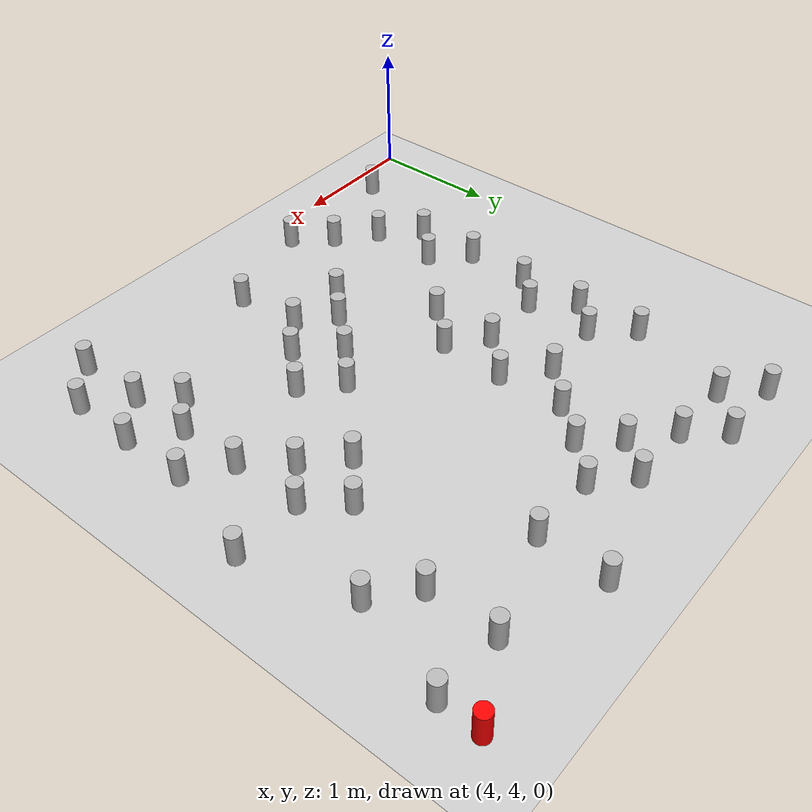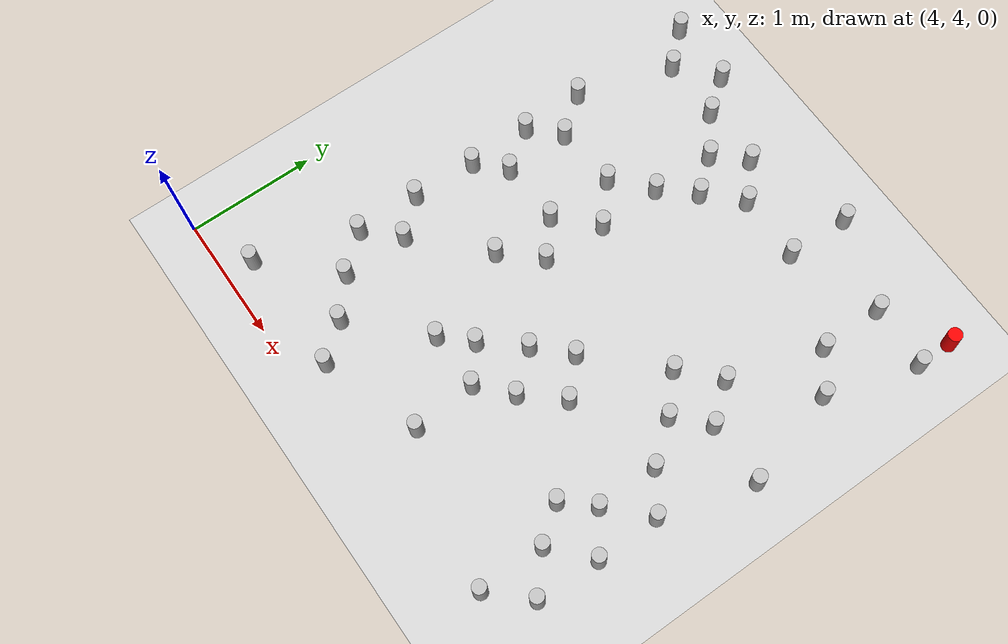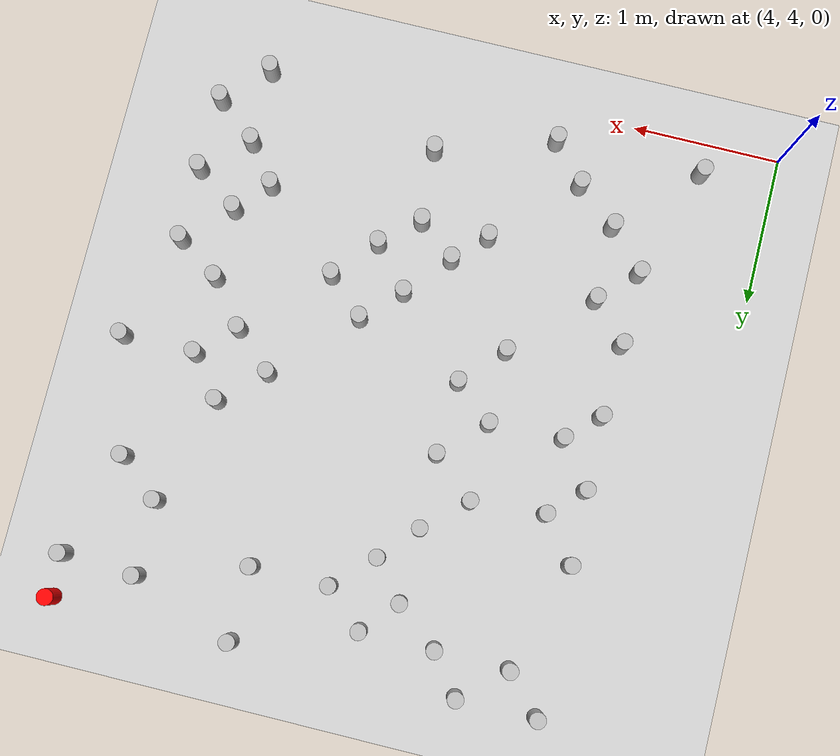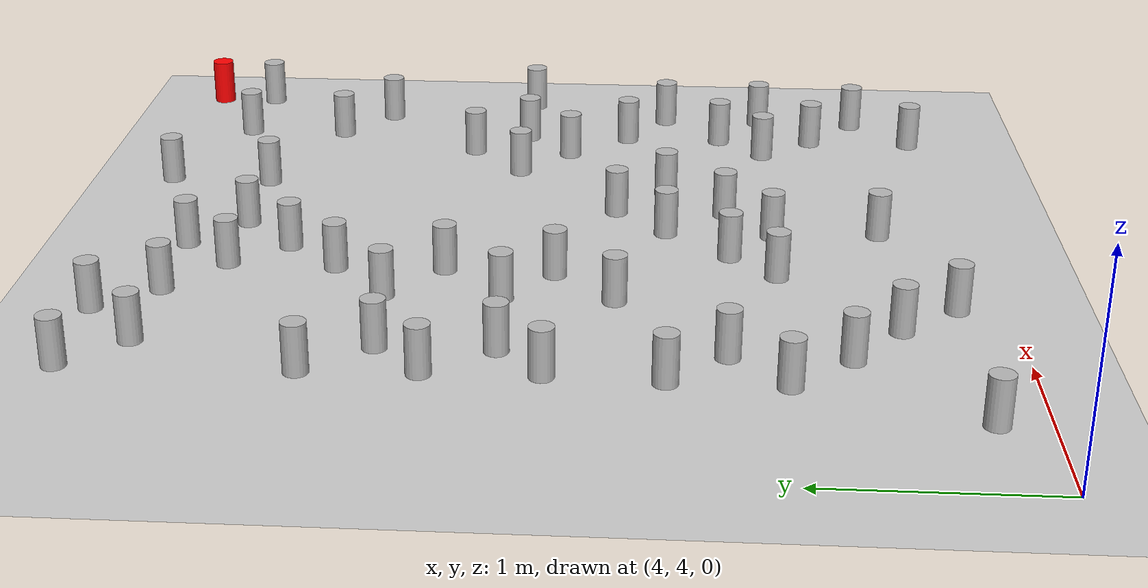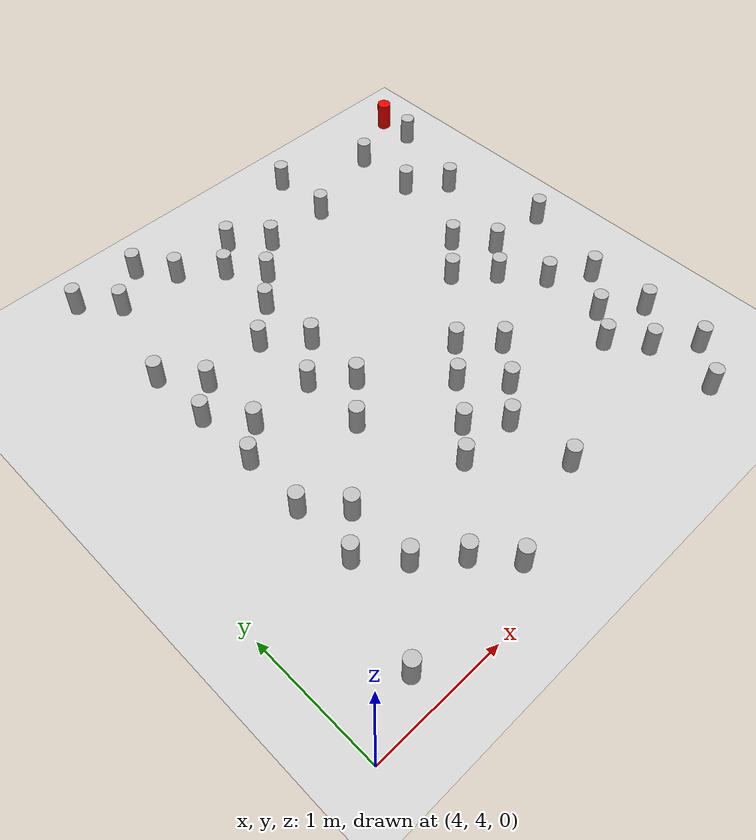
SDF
<sdf version="1.6">
 <world name="default">
  <model name="ground_plane">
   <static>1</static>
   <link name="link">
    <collision name="collision">
     <geometry><plane><normal>0 0 1</normal><size>100 100</size></plane></geometry>
     <surface><friction><ode><mu>100</mu><mu2>50</mu2></ode></friction></surface>
    </collision>
    <visual name="visual">
     <cast_shadows>0</cast_shadows>
     <geometry><plane><normal>0 0 1</normal><size>100 100</size></plane></geometry>
     <material>
      <script><uri>file://media/materials/scripts/gazebo.material</uri><name>Gazebo/Grey</name></script>
     </material>
    </visual>
   </link>
  </model>
  <model name="goal">
   <link name="link">
    <pose>0 0 0.115 0 -0 0</pose>
    <inertial>
     <mass>0.0005</mass>
     <inertia><ixx>0.00058</ixx><ixy>0</ixy><ixz>0</ixz><iyy>0.00058</iyy><iyz>0</iyz><izz>0.00019</izz></inertia>
    </inertial>
    <visual name="visual">
     <geometry><cylinder><radius>0.055</radius><length>0.23</length></cylinder></geometry>
     <material>
      <script>
       <uri>model://beer/materials/scripts</uri>
       <uri>model://beer/materials/textures</uri>
       <name>Beer/Diffuse</name>
      </script>
      <ambient>1 0 0 1</ambient>
      <diffuse>1 0 0 1</diffuse>
      <specular>0 0 0 1</specular>
      <emissive>0 0 0 1</emissive>
      <shader type="vertex"><normal_map>__default__</normal_map></shader>
     </material>
    </visual>
    <collision name="collision">
     <geometry><cylinder><radius>0.055</radius><length>0.23</length></cylinder></geometry>
     <surface>
      <friction>
       <ode><mu>1</mu><mu2>1</mu2><fdir1>0 0 0</fdir1><slip1>0</slip1><slip2>0</slip2></ode>
       <torsional>
        <coefficient>1</coefficient>
        <patch_radius>0</patch_radius>
        <surface_radius>0</surface_radius>
        <use_patch_radius>1</use_patch_radius>
        <ode><slip>0</slip></ode>
       </torsional>
      </friction>
      <bounce><restitution_coefficient>0</restitution_coefficient><threshold>1e+06</threshold></bounce>
      <contact>
       <collide_without_contact>0</collide_without_contact>
       <collide_without_contact_bitmask>1</collide_without_contact_bitmask>
       <collide_bitmask>1</collide_bitmask>
       <ode>
        <soft_cfm>0</soft_cfm>
        <soft_erp>0.2</soft_erp>
        <kp>1e+13</kp>
        <kd>1</kd>
        <max_vel>0.01</max_vel>
        <min_depth>0</min_depth>
       </ode>
       <bullet>
        <split_impulse>1</split_impulse>
        <split_impulse_penetration_threshold>-0.01</split_impulse_penetration_threshold>
        <soft_cfm>0</soft_cfm>
        <soft_erp>0.2</soft_erp>
        <kp>1e+13</kp>
        <kd>1</kd>
       </bullet>
      </contact>
     </surface>
    </collision>
   </link>
   <static>0</static>
   <pose>8.0 8.0 -9e-06 -1e-06 -4e-06 0</pose>
  </model>
  <model name="can6.55.21690439198">
   <link name="link">
    <pose>0 0 0.115 0 -0 0</pose>
    <inertial>
     <mass>0.39</mass>
     <inertia><ixx>0.00058</ixx><ixy>0</ixy><ixz>0</ixz><iyy>0.00058</iyy><iyz>0</iyz><izz>0.00019</izz></inertia>
    </inertial>
    <collision name="collision">
     <geometry><cylinder><radius>0.055</radius><length>0.23</length></cylinder></geometry>
    </collision>
    <visual name="visual">
     <geometry><cylinder><radius>0.055</radius><length>0.23</length></cylinder></geometry>
     <material>
      <script>
       <uri>model://beer/materials/scripts</uri>
       <uri>model://beer/materials/textures</uri>
       <name>Beer/Diffuse</name>
      </script>
     </material>
    </visual>
   </link>
   <pose>6.5 5.21690439198 -2e-06 1e-06 0 -9.5e-05</pose>
  </model>
  <model name="can5.55.72347122865">
   <link name="link">
    <pose>0 0 0.115 0 -0 0</pose>
    <inertial>
     <mass>0.39</mass>
     <inertia><ixx>0.00058</ixx><ixy>0</ixy><ixz>0</ixz><iyy>0.00058</iyy><iyz>0</iyz><izz>0.00019</izz></inertia>
    </inertial>
    <collision name="collision">
     <geometry><cylinder><radius>0.055</radius><length>0.23</length></cylinder></geometry>
    </collision>
    <visual name="visual">
     <geometry><cylinder><radius>0.055</radius><length>0.23</length></cylinder></geometry>
     <material>
      <script>
       <uri>model://beer/materials/scripts</uri>
       <uri>model://beer/materials/textures</uri>
       <name>Beer/Diffuse</name>
      </script>
     </material>
    </visual>
   </link>
   <pose>5.5 5.72347122865 -2e-06 1e-06 0 -9.5e-05</pose>
  </model>
  <model name="can4.761329393848.0">
   <link name="link">
    <pose>0 0 0.115 0 -0 0</pose>
    <inertial>
     <mass>0.39</mass>
     <inertia><ixx>0.00058</ixx><ixy>0</ixy><ixz>0</ixz><iyy>0.00058</iyy><iyz>0</iyz><izz>0.00019</izz></inertia>
    </inertial>
    <collision name="collision">
     <geometry><cylinder><radius>0.055</radius><length>0.23</length></cylinder></geometry>
    </collision>
    <visual name="visual">
     <geometry><cylinder><radius>0.055</radius><length>0.23</length></cylinder></geometry>
     <material>
      <script>
       <uri>model://beer/materials/scripts</uri>
       <uri>model://beer/materials/textures</uri>
       <name>Beer/Diffuse</name>
      </script>
     </material>
    </visual>
   </link>
   <pose>4.76132939384 8.0 -2e-06 1e-06 0 -9.5e-05</pose>
  </model>
  <model name="can4.758347486425.0">
   <link name="link">
    <pose>0 0 0.115 0 -0 0</pose>
    <inertial>
     <mass>0.39</mass>
     <inertia><ixx>0.00058</ixx><ixy>0</ixy><ixz>0</ixz><iyy>0.00058</iyy><iyz>0</iyz><izz>0.00019</izz></inertia>
    </inertial>
    <collision name="collision">
     <geometry><cylinder><radius>0.055</radius><length>0.23</length></cylinder></geometry>
    </collision>
    <visual name="visual">
     <geometry><cylinder><radius>0.055</radius><length>0.23</length></cylinder></geometry>
     <material>
      <script>
       <uri>model://beer/materials/scripts</uri>
       <uri>model://beer/materials/textures</uri>
       <name>Beer/Diffuse</name>
      </script>
     </material>
    </visual>
   </link>
   <pose>4.75834748642 5.0 -2e-06 1e-06 0 -9.5e-05</pose>
  </model>
  <model name="can5.277275325034.5">
   <link name="link">
    <pose>0 0 0.115 0 -0 0</pose>
    <inertial>
     <mass>0.39</mass>
     <inertia><ixx>0.00058</ixx><ixy>0</ixy><ixz>0</ixz><iyy>0.00058</iyy><iyz>0</iyz><izz>0.00019</izz></inertia>
    </inertial>
    <collision name="collision">
     <geometry><cylinder><radius>0.055</radius><length>0.23</length></cylinder></geometry>
    </collision>
    <visual name="visual">
     <geometry><cylinder><radius>0.055</radius><length>0.23</length></cylinder></geometry>
     <material>
      <script>
       <uri>model://beer/materials/scripts</uri>
       <uri>model://beer/materials/textures</uri>
       <name>Beer/Diffuse</name>
      </script>
     </material>
    </visual>
   </link>
   <pose>5.27727532503 4.5 -2e-06 1e-06 0 -9.5e-05</pose>
  </model>
  <model name="can7.56.22754010514">
   <link name="link">
    <pose>0 0 0.115 0 -0 0</pose>
    <inertial>
     <mass>0.39</mass>
     <inertia><ixx>0.00058</ixx><ixy>0</ixy><ixz>0</ixz><iyy>0.00058</iyy><iyz>0</iyz><izz>0.00019</izz></inertia>
    </inertial>
    <collision name="collision">
     <geometry><cylinder><radius>0.055</radius><length>0.23</length></cylinder></geometry>
    </collision>
    <visual name="visual">
     <geometry><cylinder><radius>0.055</radius><length>0.23</length></cylinder></geometry>
     <material>
      <script>
       <uri>model://beer/materials/scripts</uri>
       <uri>model://beer/materials/textures</uri>
       <name>Beer/Diffuse</name>
      </script>
     </material>
    </visual>
   </link>
   <pose>7.5 6.22754010514 -2e-06 1e-06 0 -9.5e-05</pose>
  </model>
  <model name="can6.287995954034.5">
   <link name="link">
    <pose>0 0 0.115 0 -0 0</pose>
    <inertial>
     <mass>0.39</mass>
     <inertia><ixx>0.00058</ixx><ixy>0</ixy><ixz>0</ixz><iyy>0.00058</iyy><iyz>0</iyz><izz>0.00019</izz></inertia>
    </inertial>
    <collision name="collision">
     <geometry><cylinder><radius>0.055</radius><length>0.23</length></cylinder></geometry>
    </collision>
    <visual name="visual">
     <geometry><cylinder><radius>0.055</radius><length>0.23</length></cylinder></geometry>
     <material>
      <script>
       <uri>model://beer/materials/scripts</uri>
       <uri>model://beer/materials/textures</uri>
       <name>Beer/Diffuse</name>
      </script>
     </material>
    </visual>
   </link>
   <pose>6.28799595403 4.5 -2e-06 1e-06 0 -9.5e-05</pose>
  </model>
  <model name="can7.57.23251088932">
   <link name="link">
    <pose>0 0 0.115 0 -0 0</pose>
    <inertial>
     <mass>0.39</mass>
     <inertia><ixx>0.00058</ixx><ixy>0</ixy><ixz>0</ixz><iyy>0.00058</iyy><iyz>0</iyz><izz>0.00019</izz></inertia>
    </inertial>
    <collision name="collision">
     <geometry><cylinder><radius>0.055</radius><length>0.23</length></cylinder></geometry>
    </collision>
    <visual name="visual">
     <geometry><cylinder><radius>0.055</radius><length>0.23</length></cylinder></geometry>
     <material>
      <script>
       <uri>model://beer/materials/scripts</uri>
       <uri>model://beer/materials/textures</uri>
       <name>Beer/Diffuse</name>
      </script>
     </material>
    </visual>
   </link>
   <pose>7.5 7.23251088932 -2e-06 1e-06 0 -9.5e-05</pose>
  </model>
  <model name="can7.55.70245644837">
   <link name="link">
    <pose>0 0 0.115 0 -0 0</pose>
    <inertial>
     <mass>0.39</mass>
     <inertia><ixx>0.00058</ixx><ixy>0</ixy><ixz>0</ixz><iyy>0.00058</iyy><iyz>0</iyz><izz>0.00019</izz></inertia>
    </inertial>
    <collision name="collision">
     <geometry><cylinder><radius>0.055</radius><length>0.23</length></cylinder></geometry>
    </collision>
    <visual name="visual">
     <geometry><cylinder><radius>0.055</radius><length>0.23</length></cylinder></geometry>
     <material>
      <script>
       <uri>model://beer/materials/scripts</uri>
       <uri>model://beer/materials/textures</uri>
       <name>Beer/Diffuse</name>
      </script>
     </material>
    </visual>
   </link>
   <pose>7.5 5.70245644837 -2e-06 1e-06 0 -9.5e-05</pose>
  </model>
  <model name="can4.787923865286.0">
   <link name="link">
    <pose>0 0 0.115 0 -0 0</pose>
    <inertial>
     <mass>0.39</mass>
     <inertia><ixx>0.00058</ixx><ixy>0</ixy><ixz>0</ixz><iyy>0.00058</iyy><iyz>0</iyz><izz>0.00019</izz></inertia>
    </inertial>
    <collision name="collision">
     <geometry><cylinder><radius>0.055</radius><length>0.23</length></cylinder></geometry>
    </collision>
    <visual name="visual">
     <geometry><cylinder><radius>0.055</radius><length>0.23</length></cylinder></geometry>
     <material>
      <script>
       <uri>model://beer/materials/scripts</uri>
       <uri>model://beer/materials/textures</uri>
       <name>Beer/Diffuse</name>
      </script>
     </material>
    </visual>
   </link>
   <pose>4.78792386528 6.0 -2e-06 1e-06 0 -9.5e-05</pose>
  </model>
  <model name="can7.796300608615.0">
   <link name="link">
    <pose>0 0 0.115 0 -0 0</pose>
    <inertial>
     <mass>0.39</mass>
     <inertia><ixx>0.00058</ixx><ixy>0</ixy><ixz>0</ixz><iyy>0.00058</iyy><iyz>0</iyz><izz>0.00019</izz></inertia>
    </inertial>
    <collision name="collision">
     <geometry><cylinder><radius>0.055</radius><length>0.23</length></cylinder></geometry>
    </collision>
    <visual name="visual">
     <geometry><cylinder><radius>0.055</radius><length>0.23</length></cylinder></geometry>
     <material>
      <script>
       <uri>model://beer/materials/scripts</uri>
       <uri>model://beer/materials/textures</uri>
       <name>Beer/Diffuse</name>
      </script>
     </material>
    </visual>
   </link>
   <pose>7.79630060861 5.0 -2e-06 1e-06 0 -9.5e-05</pose>
  </model>
  <model name="can7.57.73577219102">
   <link name="link">
    <pose>0 0 0.115 0 -0 0</pose>
    <inertial>
     <mass>0.39</mass>
     <inertia><ixx>0.00058</ixx><ixy>0</ixy><ixz>0</ixz><iyy>0.00058</iyy><iyz>0</iyz><izz>0.00019</izz></inertia>
    </inertial>
    <collision name="collision">
     <geometry><cylinder><radius>0.055</radius><length>0.23</length></cylinder></geometry>
    </collision>
    <visual name="visual">
     <geometry><cylinder><radius>0.055</radius><length>0.23</length></cylinder></geometry>
     <material>
      <script>
       <uri>model://beer/materials/scripts</uri>
       <uri>model://beer/materials/textures</uri>
       <name>Beer/Diffuse</name>
      </script>
     </material>
    </visual>
   </link>
   <pose>7.5 7.73577219102 -2e-06 1e-06 0 -9.5e-05</pose>
  </model>
  <model name="can6.78570254637.5">
   <link name="link">
    <pose>0 0 0.115 0 -0 0</pose>
    <inertial>
     <mass>0.39</mass>
     <inertia><ixx>0.00058</ixx><ixy>0</ixy><ixz>0</ixz><iyy>0.00058</iyy><iyz>0</iyz><izz>0.00019</izz></inertia>
    </inertial>
    <collision name="collision">
     <geometry><cylinder><radius>0.055</radius><length>0.23</length></cylinder></geometry>
    </collision>
    <visual name="visual">
     <geometry><cylinder><radius>0.055</radius><length>0.23</length></cylinder></geometry>
     <material>
      <script>
       <uri>model://beer/materials/scripts</uri>
       <uri>model://beer/materials/textures</uri>
       <name>Beer/Diffuse</name>
      </script>
     </material>
    </visual>
   </link>
   <pose>6.7857025463 7.5 -2e-06 1e-06 0 -9.5e-05</pose>
  </model>
  <model name="can6.07.24815827608">
   <link name="link">
    <pose>0 0 0.115 0 -0 0</pose>
    <inertial>
     <mass>0.39</mass>
     <inertia><ixx>0.00058</ixx><ixy>0</ixy><ixz>0</ixz><iyy>0.00058</iyy><iyz>0</iyz><izz>0.00019</izz></inertia>
    </inertial>
    <collision name="collision">
     <geometry><cylinder><radius>0.055</radius><length>0.23</length></cylinder></geometry>
    </collision>
    <visual name="visual">
     <geometry><cylinder><radius>0.055</radius><length>0.23</length></cylinder></geometry>
     <material>
      <script>
       <uri>model://beer/materials/scripts</uri>
       <uri>model://beer/materials/textures</uri>
       <name>Beer/Diffuse</name>
      </script>
     </material>
    </visual>
   </link>
   <pose>6.0 7.24815827608 -2e-06 1e-06 0 -9.5e-05</pose>
  </model>
  <model name="can5.05.24297011674">
   <link name="link">
    <pose>0 0 0.115 0 -0 0</pose>
    <inertial>
     <mass>0.39</mass>
     <inertia><ixx>0.00058</ixx><ixy>0</ixy><ixz>0</ixz><iyy>0.00058</iyy><iyz>0</iyz><izz>0.00019</izz></inertia>
    </inertial>
    <collision name="collision">
     <geometry><cylinder><radius>0.055</radius><length>0.23</length></cylinder></geometry>
    </collision>
    <visual name="visual">
     <geometry><cylinder><radius>0.055</radius><length>0.23</length></cylinder></geometry>
     <material>
      <script>
       <uri>model://beer/materials/scripts</uri>
       <uri>model://beer/materials/textures</uri>
       <name>Beer/Diffuse</name>
      </script>
     </material>
    </visual>
   </link>
   <pose>5.0 5.24297011674 -2e-06 1e-06 0 -9.5e-05</pose>
  </model>
  <model name="can6.255980507315.5">
   <link name="link">
    <pose>0 0 0.115 0 -0 0</pose>
    <inertial>
     <mass>0.39</mass>
     <inertia><ixx>0.00058</ixx><ixy>0</ixy><ixz>0</ixz><iyy>0.00058</iyy><iyz>0</iyz><izz>0.00019</izz></inertia>
    </inertial>
    <collision name="collision">
     <geometry><cylinder><radius>0.055</radius><length>0.23</length></cylinder></geometry>
    </collision>
    <visual name="visual">
     <geometry><cylinder><radius>0.055</radius><length>0.23</length></cylinder></geometry>
     <material>
      <script>
       <uri>model://beer/materials/scripts</uri>
       <uri>model://beer/materials/textures</uri>
       <name>Beer/Diffuse</name>
      </script>
     </material>
    </visual>
   </link>
   <pose>6.25598050731 5.5 -2e-06 1e-06 0 -9.5e-05</pose>
  </model>
  <model name="can5.57.73634530199">
   <link name="link">
    <pose>0 0 0.115 0 -0 0</pose>
    <inertial>
     <mass>0.39</mass>
     <inertia><ixx>0.00058</ixx><ixy>0</ixy><ixz>0</ixz><iyy>0.00058</iyy><iyz>0</iyz><izz>0.00019</izz></inertia>
    </inertial>
    <collision name="collision">
     <geometry><cylinder><radius>0.055</radius><length>0.23</length></cylinder></geometry>
    </collision>
    <visual name="visual">
     <geometry><cylinder><radius>0.055</radius><length>0.23</length></cylinder></geometry>
     <material>
      <script>
       <uri>model://beer/materials/scripts</uri>
       <uri>model://beer/materials/textures</uri>
       <name>Beer/Diffuse</name>
      </script>
     </material>
    </visual>
   </link>
   <pose>5.5 7.73634530199 -2e-06 1e-06 0 -9.5e-05</pose>
  </model>
  <model name="can4.767731839547.0">
   <link name="link">
    <pose>0 0 0.115 0 -0 0</pose>
    <inertial>
     <mass>0.39</mass>
     <inertia><ixx>0.00058</ixx><ixy>0</ixy><ixz>0</ixz><iyy>0.00058</iyy><iyz>0</iyz><izz>0.00019</izz></inertia>
    </inertial>
    <collision name="collision">
     <geometry><cylinder><radius>0.055</radius><length>0.23</length></cylinder></geometry>
    </collision>
    <visual name="visual">
     <geometry><cylinder><radius>0.055</radius><length>0.23</length></cylinder></geometry>
     <material>
      <script>
       <uri>model://beer/materials/scripts</uri>
       <uri>model://beer/materials/textures</uri>
       <name>Beer/Diffuse</name>
      </script>
     </material>
    </visual>
   </link>
   <pose>4.76773183954 7.0 -2e-06 1e-06 0 -9.5e-05</pose>
  </model>
  <model name="can7.776277167364.5">
   <link name="link">
    <pose>0 0 0.115 0 -0 0</pose>
    <inertial>
     <mass>0.39</mass>
     <inertia><ixx>0.00058</ixx><ixy>0</ixy><ixz>0</ixz><iyy>0.00058</iyy><iyz>0</iyz><izz>0.00019</izz></inertia>
    </inertial>
    <collision name="collision">
     <geometry><cylinder><radius>0.055</radius><length>0.23</length></cylinder></geometry>
    </collision>
    <visual name="visual">
     <geometry><cylinder><radius>0.055</radius><length>0.23</length></cylinder></geometry>
     <material>
      <script>
       <uri>model://beer/materials/scripts</uri>
       <uri>model://beer/materials/textures</uri>
       <name>Beer/Diffuse</name>
      </script>
     </material>
    </visual>
   </link>
   <pose>7.77627716736 4.5 -2e-06 1e-06 0 -9.5e-05</pose>
  </model>
  <model name="can5.56.74926066323">
   <link name="link">
    <pose>0 0 0.115 0 -0 0</pose>
    <inertial>
     <mass>0.39</mass>
     <inertia><ixx>0.00058</ixx><ixy>0</ixy><ixz>0</ixz><iyy>0.00058</iyy><iyz>0</iyz><izz>0.00019</izz></inertia>
    </inertial>
    <collision name="collision">
     <geometry><cylinder><radius>0.055</radius><length>0.23</length></cylinder></geometry>
    </collision>
    <visual name="visual">
     <geometry><cylinder><radius>0.055</radius><length>0.23</length></cylinder></geometry>
     <material>
      <script>
       <uri>model://beer/materials/scripts</uri>
       <uri>model://beer/materials/textures</uri>
       <name>Beer/Diffuse</name>
      </script>
     </material>
    </visual>
   </link>
   <pose>5.5 6.74926066323 -2e-06 1e-06 0 -9.5e-05</pose>
  </model>
  <model name="can5.06.71088116103">
   <link name="link">
    <pose>0 0 0.115 0 -0 0</pose>
    <inertial>
     <mass>0.39</mass>
     <inertia><ixx>0.00058</ixx><ixy>0</ixy><ixz>0</ixz><iyy>0.00058</iyy><iyz>0</iyz><izz>0.00019</izz></inertia>
    </inertial>
    <collision name="collision">
     <geometry><cylinder><radius>0.055</radius><length>0.23</length></cylinder></geometry>
    </collision>
    <visual name="visual">
     <geometry><cylinder><radius>0.055</radius><length>0.23</length></cylinder></geometry>
     <material>
      <script>
       <uri>model://beer/materials/scripts</uri>
       <uri>model://beer/materials/textures</uri>
       <name>Beer/Diffuse</name>
      </script>
     </material>
    </visual>
   </link>
   <pose>5.0 6.71088116103 -2e-06 1e-06 0 -9.5e-05</pose>
  </model>
  <model name="can4.780847735126.5">
   <link name="link">
    <pose>0 0 0.115 0 -0 0</pose>
    <inertial>
     <mass>0.39</mass>
     <inertia><ixx>0.00058</ixx><ixy>0</ixy><ixz>0</ixz><iyy>0.00058</iyy><iyz>0</iyz><izz>0.00019</izz></inertia>
    </inertial>
    <collision name="collision">
     <geometry><cylinder><radius>0.055</radius><length>0.23</length></cylinder></geometry>
    </collision>
    <visual name="visual">
     <geometry><cylinder><radius>0.055</radius><length>0.23</length></cylinder></geometry>
     <material>
      <script>
       <uri>model://beer/materials/scripts</uri>
       <uri>model://beer/materials/textures</uri>
       <name>Beer/Diffuse</name>
      </script>
     </material>
    </visual>
   </link>
   <pose>4.78084773512 6.5 -2e-06 1e-06 0 -9.5e-05</pose>
  </model>
  <model name="can8.06.2236519285">
   <link name="link">
    <pose>0 0 0.115 0 -0 0</pose>
    <inertial>
     <mass>0.39</mass>
     <inertia><ixx>0.00058</ixx><ixy>0</ixy><ixz>0</ixz><iyy>0.00058</iyy><iyz>0</iyz><izz>0.00019</izz></inertia>
    </inertial>
    <collision name="collision">
     <geometry><cylinder><radius>0.055</radius><length>0.23</length></cylinder></geometry>
    </collision>
    <visual name="visual">
     <geometry><cylinder><radius>0.055</radius><length>0.23</length></cylinder></geometry>
     <material>
      <script>
       <uri>model://beer/materials/scripts</uri>
       <uri>model://beer/materials/textures</uri>
       <name>Beer/Diffuse</name>
      </script>
     </material>
    </visual>
   </link>
   <pose>8.0 6.2236519285 -2e-06 1e-06 0 -9.5e-05</pose>
  </model>
  <model name="can4.54.22527799997">
   <link name="link">
    <pose>0 0 0.115 0 -0 0</pose>
    <inertial>
     <mass>0.39</mass>
     <inertia><ixx>0.00058</ixx><ixy>0</ixy><ixz>0</ixz><iyy>0.00058</iyy><iyz>0</iyz><izz>0.00019</izz></inertia>
    </inertial>
    <collision name="collision">
     <geometry><cylinder><radius>0.055</radius><length>0.23</length></cylinder></geometry>
    </collision>
    <visual name="visual">
     <geometry><cylinder><radius>0.055</radius><length>0.23</length></cylinder></geometry>
     <material>
      <script>
       <uri>model://beer/materials/scripts</uri>
       <uri>model://beer/materials/textures</uri>
       <name>Beer/Diffuse</name>
      </script>
     </material>
    </visual>
   </link>
   <pose>4.5 4.22527799997 -2e-06 1e-06 0 -9.5e-05</pose>
  </model>
  <model name="can5.297262980748.0">
   <link name="link">
    <pose>0 0 0.115 0 -0 0</pose>
    <inertial>
     <mass>0.39</mass>
     <inertia><ixx>0.00058</ixx><ixy>0</ixy><ixz>0</ixz><iyy>0.00058</iyy><iyz>0</iyz><izz>0.00019</izz></inertia>
    </inertial>
    <collision name="collision">
     <geometry><cylinder><radius>0.055</radius><length>0.23</length></cylinder></geometry>
    </collision>
    <visual name="visual">
     <geometry><cylinder><radius>0.055</radius><length>0.23</length></cylinder></geometry>
     <material>
      <script>
       <uri>model://beer/materials/scripts</uri>
       <uri>model://beer/materials/textures</uri>
       <name>Beer/Diffuse</name>
      </script>
     </material>
    </visual>
   </link>
   <pose>5.29726298074 8.0 -2e-06 1e-06 0 -9.5e-05</pose>
  </model>
  <model name="can6.25917121217.5">
   <link name="link">
    <pose>0 0 0.115 0 -0 0</pose>
    <inertial>
     <mass>0.39</mass>
     <inertia><ixx>0.00058</ixx><ixy>0</ixy><ixz>0</ixz><iyy>0.00058</iyy><iyz>0</iyz><izz>0.00019</izz></inertia>
    </inertial>
    <collision name="collision">
     <geometry><cylinder><radius>0.055</radius><length>0.23</length></cylinder></geometry>
    </collision>
    <visual name="visual">
     <geometry><cylinder><radius>0.055</radius><length>0.23</length></cylinder></geometry>
     <material>
      <script>
       <uri>model://beer/materials/scripts</uri>
       <uri>model://beer/materials/textures</uri>
       <name>Beer/Diffuse</name>
      </script>
     </material>
    </visual>
   </link>
   <pose>6.2591712121 7.5 -2e-06 1e-06 0 -9.5e-05</pose>
  </model>
  <model name="can5.04.72886177709">
   <link name="link">
    <pose>0 0 0.115 0 -0 0</pose>
    <inertial>
     <mass>0.39</mass>
     <inertia><ixx>0.00058</ixx><ixy>0</ixy><ixz>0</ixz><iyy>0.00058</iyy><iyz>0</iyz><izz>0.00019</izz></inertia>
    </inertial>
    <collision name="collision">
     <geometry><cylinder><radius>0.055</radius><length>0.23</length></cylinder></geometry>
    </collision>
    <visual name="visual">
     <geometry><cylinder><radius>0.055</radius><length>0.23</length></cylinder></geometry>
     <material>
      <script>
       <uri>model://beer/materials/scripts</uri>
       <uri>model://beer/materials/textures</uri>
       <name>Beer/Diffuse</name>
      </script>
     </material>
    </visual>
   </link>
   <pose>5.0 4.72886177709 -2e-06 1e-06 0 -9.5e-05</pose>
  </model>
  <model name="can7.06.24262279954">
   <link name="link">
    <pose>0 0 0.115 0 -0 0</pose>
    <inertial>
     <mass>0.39</mass>
     <inertia><ixx>0.00058</ixx><ixy>0</ixy><ixz>0</ixz><iyy>0.00058</iyy><iyz>0</iyz><izz>0.00019</izz></inertia>
    </inertial>
    <collision name="collision">
     <geometry><cylinder><radius>0.055</radius><length>0.23</length></cylinder></geometry>
    </collision>
    <visual name="visual">
     <geometry><cylinder><radius>0.055</radius><length>0.23</length></cylinder></geometry>
     <material>
      <script>
       <uri>model://beer/materials/scripts</uri>
       <uri>model://beer/materials/textures</uri>
       <name>Beer/Diffuse</name>
      </script>
     </material>
    </visual>
   </link>
   <pose>7.0 6.24262279954 -2e-06 1e-06 0 -9.5e-05</pose>
  </model>
  <model name="can6.798656203118.0">
   <link name="link">
    <pose>0 0 0.115 0 -0 0</pose>
    <inertial>
     <mass>0.39</mass>
     <inertia><ixx>0.00058</ixx><ixy>0</ixy><ixz>0</ixz><iyy>0.00058</iyy><iyz>0</iyz><izz>0.00019</izz></inertia>
    </inertial>
    <collision name="collision">
     <geometry><cylinder><radius>0.055</radius><length>0.23</length></cylinder></geometry>
    </collision>
    <visual name="visual">
     <geometry><cylinder><radius>0.055</radius><length>0.23</length></cylinder></geometry>
     <material>
      <script>
       <uri>model://beer/materials/scripts</uri>
       <uri>model://beer/materials/textures</uri>
       <name>Beer/Diffuse</name>
      </script>
     </material>
    </visual>
   </link>
   <pose>6.79865620311 8.0 -2e-06 1e-06 0 -9.5e-05</pose>
  </model>
  <model name="can7.54.73805223182">
   <link name="link">
    <pose>0 0 0.115 0 -0 0</pose>
    <inertial>
     <mass>0.39</mass>
     <inertia><ixx>0.00058</ixx><ixy>0</ixy><ixz>0</ixz><iyy>0.00058</iyy><iyz>0</iyz><izz>0.00019</izz></inertia>
    </inertial>
    <collision name="collision">
     <geometry><cylinder><radius>0.055</radius><length>0.23</length></cylinder></geometry>
    </collision>
    <visual name="visual">
     <geometry><cylinder><radius>0.055</radius><length>0.23</length></cylinder></geometry>
     <material>
      <script>
       <uri>model://beer/materials/scripts</uri>
       <uri>model://beer/materials/textures</uri>
       <name>Beer/Diffuse</name>
      </script>
     </material>
    </visual>
   </link>
   <pose>7.5 4.73805223182 -2e-06 1e-06 0 -9.5e-05</pose>
  </model>
  <model name="can6.05.20664543071">
   <link name="link">
    <pose>0 0 0.115 0 -0 0</pose>
    <inertial>
     <mass>0.39</mass>
     <inertia><ixx>0.00058</ixx><ixy>0</ixy><ixz>0</ixz><iyy>0.00058</iyy><iyz>0</iyz><izz>0.00019</izz></inertia>
    </inertial>
    <collision name="collision">
     <geometry><cylinder><radius>0.055</radius><length>0.23</length></cylinder></geometry>
    </collision>
    <visual name="visual">
     <geometry><cylinder><radius>0.055</radius><length>0.23</length></cylinder></geometry>
     <material>
      <script>
       <uri>model://beer/materials/scripts</uri>
       <uri>model://beer/materials/textures</uri>
       <name>Beer/Diffuse</name>
      </script>
     </material>
    </visual>
   </link>
   <pose>6.0 5.20664543071 -2e-06 1e-06 0 -9.5e-05</pose>
  </model>
  <model name="can5.785686238236.5">
   <link name="link">
    <pose>0 0 0.115 0 -0 0</pose>
    <inertial>
     <mass>0.39</mass>
     <inertia><ixx>0.00058</ixx><ixy>0</ixy><ixz>0</ixz><iyy>0.00058</iyy><iyz>0</iyz><izz>0.00019</izz></inertia>
    </inertial>
    <collision name="collision">
     <geometry><cylinder><radius>0.055</radius><length>0.23</length></cylinder></geometry>
    </collision>
    <visual name="visual">
     <geometry><cylinder><radius>0.055</radius><length>0.23</length></cylinder></geometry>
     <material>
      <script>
       <uri>model://beer/materials/scripts</uri>
       <uri>model://beer/materials/textures</uri>
       <name>Beer/Diffuse</name>
      </script>
     </material>
    </visual>
   </link>
   <pose>5.78568623823 6.5 -2e-06 1e-06 0 -9.5e-05</pose>
  </model>
  <model name="can5.761035688396.0">
   <link name="link">
    <pose>0 0 0.115 0 -0 0</pose>
    <inertial>
     <mass>0.39</mass>
     <inertia><ixx>0.00058</ixx><ixy>0</ixy><ixz>0</ixz><iyy>0.00058</iyy><iyz>0</iyz><izz>0.00019</izz></inertia>
    </inertial>
    <collision name="collision">
     <geometry><cylinder><radius>0.055</radius><length>0.23</length></cylinder></geometry>
    </collision>
    <visual name="visual">
     <geometry><cylinder><radius>0.055</radius><length>0.23</length></cylinder></geometry>
     <material>
      <script>
       <uri>model://beer/materials/scripts</uri>
       <uri>model://beer/materials/textures</uri>
       <name>Beer/Diffuse</name>
      </script>
     </material>
    </visual>
   </link>
   <pose>5.76103568839 6.0 -2e-06 1e-06 0 -9.5e-05</pose>
  </model>
  <model name="can7.792180273815.5">
   <link name="link">
    <pose>0 0 0.115 0 -0 0</pose>
    <inertial>
     <mass>0.39</mass>
     <inertia><ixx>0.00058</ixx><ixy>0</ixy><ixz>0</ixz><iyy>0.00058</iyy><iyz>0</iyz><izz>0.00019</izz></inertia>
    </inertial>
    <collision name="collision">
     <geometry><cylinder><radius>0.055</radius><length>0.23</length></cylinder></geometry>
    </collision>
    <visual name="visual">
     <geometry><cylinder><radius>0.055</radius><length>0.23</length></cylinder></geometry>
     <material>
      <script>
       <uri>model://beer/materials/scripts</uri>
       <uri>model://beer/materials/textures</uri>
       <name>Beer/Diffuse</name>
      </script>
     </material>
    </visual>
   </link>
   <pose>7.79218027381 5.5 -2e-06 1e-06 0 -9.5e-05</pose>
  </model>
  <model name="can6.55.73943236228">
   <link name="link">
    <pose>0 0 0.115 0 -0 0</pose>
    <inertial>
     <mass>0.39</mass>
     <inertia><ixx>0.00058</ixx><ixy>0</ixy><ixz>0</ixz><iyy>0.00058</iyy><iyz>0</iyz><izz>0.00019</izz></inertia>
    </inertial>
    <collision name="collision">
     <geometry><cylinder><radius>0.055</radius><length>0.23</length></cylinder></geometry>
    </collision>
    <visual name="visual">
     <geometry><cylinder><radius>0.055</radius><length>0.23</length></cylinder></geometry>
     <material>
      <script>
       <uri>model://beer/materials/scripts</uri>
       <uri>model://beer/materials/textures</uri>
       <name>Beer/Diffuse</name>
      </script>
     </material>
    </visual>
   </link>
   <pose>6.5 5.73943236228 -2e-06 1e-06 0 -9.5e-05</pose>
  </model>
  <model name="can6.07.73547280589">
   <link name="link">
    <pose>0 0 0.115 0 -0 0</pose>
    <inertial>
     <mass>0.39</mass>
     <inertia><ixx>0.00058</ixx><ixy>0</ixy><ixz>0</ixz><iyy>0.00058</iyy><iyz>0</iyz><izz>0.00019</izz></inertia>
    </inertial>
    <collision name="collision">
     <geometry><cylinder><radius>0.055</radius><length>0.23</length></cylinder></geometry>
    </collision>
    <visual name="visual">
     <geometry><cylinder><radius>0.055</radius><length>0.23</length></cylinder></geometry>
     <material>
      <script>
       <uri>model://beer/materials/scripts</uri>
       <uri>model://beer/materials/textures</uri>
       <name>Beer/Diffuse</name>
      </script>
     </material>
    </visual>
   </link>
   <pose>6.0 7.73547280589 -2e-06 1e-06 0 -9.5e-05</pose>
  </model>
  <model name="can7.54.22034290211">
   <link name="link">
    <pose>0 0 0.115 0 -0 0</pose>
    <inertial>
     <mass>0.39</mass>
     <inertia><ixx>0.00058</ixx><ixy>0</ixy><ixz>0</ixz><iyy>0.00058</iyy><iyz>0</iyz><izz>0.00019</izz></inertia>
    </inertial>
    <collision name="collision">
     <geometry><cylinder><radius>0.055</radius><length>0.23</length></cylinder></geometry>
    </collision>
    <visual name="visual">
     <geometry><cylinder><radius>0.055</radius><length>0.23</length></cylinder></geometry>
     <material>
      <script>
       <uri>model://beer/materials/scripts</uri>
       <uri>model://beer/materials/textures</uri>
       <name>Beer/Diffuse</name>
      </script>
     </material>
    </visual>
   </link>
   <pose>7.5 4.22034290211 -2e-06 1e-06 0 -9.5e-05</pose>
  </model>
  <model name="can5.56.22164849084">
   <link name="link">
    <pose>0 0 0.115 0 -0 0</pose>
    <inertial>
     <mass>0.39</mass>
     <inertia><ixx>0.00058</ixx><ixy>0</ixy><ixz>0</ixz><iyy>0.00058</iyy><iyz>0</iyz><izz>0.00019</izz></inertia>
    </inertial>
    <collision name="collision">
     <geometry><cylinder><radius>0.055</radius><length>0.23</length></cylinder></geometry>
    </collision>
    <visual name="visual">
     <geometry><cylinder><radius>0.055</radius><length>0.23</length></cylinder></geometry>
     <material>
      <script>
       <uri>model://beer/materials/scripts</uri>
       <uri>model://beer/materials/textures</uri>
       <name>Beer/Diffuse</name>
      </script>
     </material>
    </visual>
   </link>
   <pose>5.5 6.22164849084 -2e-06 1e-06 0 -9.5e-05</pose>
  </model>
  <model name="can5.54.2372789124">
   <link name="link">
    <pose>0 0 0.115 0 -0 0</pose>
    <inertial>
     <mass>0.39</mass>
     <inertia><ixx>0.00058</ixx><ixy>0</ixy><ixz>0</ixz><iyy>0.00058</iyy><iyz>0</iyz><izz>0.00019</izz></inertia>
    </inertial>
    <collision name="collision">
     <geometry><cylinder><radius>0.055</radius><length>0.23</length></cylinder></geometry>
    </collision>
    <visual name="visual">
     <geometry><cylinder><radius>0.055</radius><length>0.23</length></cylinder></geometry>
     <material>
      <script>
       <uri>model://beer/materials/scripts</uri>
       <uri>model://beer/materials/textures</uri>
       <name>Beer/Diffuse</name>
      </script>
     </material>
    </visual>
   </link>
   <pose>5.5 4.2372789124 -2e-06 1e-06 0 -9.5e-05</pose>
  </model>
  <model name="can5.776765560687.0">
   <link name="link">
    <pose>0 0 0.115 0 -0 0</pose>
    <inertial>
     <mass>0.39</mass>
     <inertia><ixx>0.00058</ixx><ixy>0</ixy><ixz>0</ixz><iyy>0.00058</iyy><iyz>0</iyz><izz>0.00019</izz></inertia>
    </inertial>
    <collision name="collision">
     <geometry><cylinder><radius>0.055</radius><length>0.23</length></cylinder></geometry>
    </collision>
    <visual name="visual">
     <geometry><cylinder><radius>0.055</radius><length>0.23</length></cylinder></geometry>
     <material>
      <script>
       <uri>model://beer/materials/scripts</uri>
       <uri>model://beer/materials/textures</uri>
       <name>Beer/Diffuse</name>
      </script>
     </material>
    </visual>
   </link>
   <pose>5.77676556068 7.0 -2e-06 1e-06 0 -9.5e-05</pose>
  </model>
  <model name="can6.751454091175.5">
   <link name="link">
    <pose>0 0 0.115 0 -0 0</pose>
    <inertial>
     <mass>0.39</mass>
     <inertia><ixx>0.00058</ixx><ixy>0</ixy><ixz>0</ixz><iyy>0.00058</iyy><iyz>0</iyz><izz>0.00019</izz></inertia>
    </inertial>
    <collision name="collision">
     <geometry><cylinder><radius>0.055</radius><length>0.23</length></cylinder></geometry>
    </collision>
    <visual name="visual">
     <geometry><cylinder><radius>0.055</radius><length>0.23</length></cylinder></geometry>
     <material>
      <script>
       <uri>model://beer/materials/scripts</uri>
       <uri>model://beer/materials/textures</uri>
       <name>Beer/Diffuse</name>
      </script>
     </material>
    </visual>
   </link>
   <pose>6.75145409117 5.5 -2e-06 1e-06 0 -9.5e-05</pose>
  </model>
  <model name="can4.763435337615.5">
   <link name="link">
    <pose>0 0 0.115 0 -0 0</pose>
    <inertial>
     <mass>0.39</mass>
     <inertia><ixx>0.00058</ixx><ixy>0</ixy><ixz>0</ixz><iyy>0.00058</iyy><iyz>0</iyz><izz>0.00019</izz></inertia>
    </inertial>
    <collision name="collision">
     <geometry><cylinder><radius>0.055</radius><length>0.23</length></cylinder></geometry>
    </collision>
    <visual name="visual">
     <geometry><cylinder><radius>0.055</radius><length>0.23</length></cylinder></geometry>
     <material>
      <script>
       <uri>model://beer/materials/scripts</uri>
       <uri>model://beer/materials/textures</uri>
       <name>Beer/Diffuse</name>
      </script>
     </material>
    </visual>
   </link>
   <pose>4.76343533761 5.5 -2e-06 1e-06 0 -9.5e-05</pose>
  </model>
  <model name="can7.262235889786.0">
   <link name="link">
    <pose>0 0 0.115 0 -0 0</pose>
    <inertial>
     <mass>0.39</mass>
     <inertia><ixx>0.00058</ixx><ixy>0</ixy><ixz>0</ixz><iyy>0.00058</iyy><iyz>0</iyz><izz>0.00019</izz></inertia>
    </inertial>
    <collision name="collision">
     <geometry><cylinder><radius>0.055</radius><length>0.23</length></cylinder></geometry>
    </collision>
    <visual name="visual">
     <geometry><cylinder><radius>0.055</radius><length>0.23</length></cylinder></geometry>
     <material>
      <script>
       <uri>model://beer/materials/scripts</uri>
       <uri>model://beer/materials/textures</uri>
       <name>Beer/Diffuse</name>
      </script>
     </material>
    </visual>
   </link>
   <pose>7.26223588978 6.0 -2e-06 1e-06 0 -9.5e-05</pose>
  </model>
  <model name="can5.794673146615.0">
   <link name="link">
    <pose>0 0 0.115 0 -0 0</pose>
    <inertial>
     <mass>0.39</mass>
     <inertia><ixx>0.00058</ixx><ixy>0</ixy><ixz>0</ixz><iyy>0.00058</iyy><iyz>0</iyz><izz>0.00019</izz></inertia>
    </inertial>
    <collision name="collision">
     <geometry><cylinder><radius>0.055</radius><length>0.23</length></cylinder></geometry>
    </collision>
    <visual name="visual">
     <geometry><cylinder><radius>0.055</radius><length>0.23</length></cylinder></geometry>
     <material>
      <script>
       <uri>model://beer/materials/scripts</uri>
       <uri>model://beer/materials/textures</uri>
       <name>Beer/Diffuse</name>
      </script>
     </material>
    </visual>
   </link>
   <pose>5.79467314661 5.0 -2e-06 1e-06 0 -9.5e-05</pose>
  </model>
  <model name="can7.281952763876.5">
   <link name="link">
    <pose>0 0 0.115 0 -0 0</pose>
    <inertial>
     <mass>0.39</mass>
     <inertia><ixx>0.00058</ixx><ixy>0</ixy><ixz>0</ixz><iyy>0.00058</iyy><iyz>0</iyz><izz>0.00019</izz></inertia>
    </inertial>
    <collision name="collision">
     <geometry><cylinder><radius>0.055</radius><length>0.23</length></cylinder></geometry>
    </collision>
    <visual name="visual">
     <geometry><cylinder><radius>0.055</radius><length>0.23</length></cylinder></geometry>
     <material>
      <script>
       <uri>model://beer/materials/scripts</uri>
       <uri>model://beer/materials/textures</uri>
       <name>Beer/Diffuse</name>
      </script>
     </material>
    </visual>
   </link>
   <pose>7.28195276387 6.5 -2e-06 1e-06 0 -9.5e-05</pose>
  </model>
  <model name="can5.06.20063134102">
   <link name="link">
    <pose>0 0 0.115 0 -0 0</pose>
    <inertial>
     <mass>0.39</mass>
     <inertia><ixx>0.00058</ixx><ixy>0</ixy><ixz>0</ixz><iyy>0.00058</iyy><iyz>0</iyz><izz>0.00019</izz></inertia>
    </inertial>
    <collision name="collision">
     <geometry><cylinder><radius>0.055</radius><length>0.23</length></cylinder></geometry>
    </collision>
    <visual name="visual">
     <geometry><cylinder><radius>0.055</radius><length>0.23</length></cylinder></geometry>
     <material>
      <script>
       <uri>model://beer/materials/scripts</uri>
       <uri>model://beer/materials/textures</uri>
       <name>Beer/Diffuse</name>
      </script>
     </material>
    </visual>
   </link>
   <pose>5.0 6.20063134102 -2e-06 1e-06 0 -9.5e-05</pose>
  </model>
  <model name="can5.07.74512098209">
   <link name="link">
    <pose>0 0 0.115 0 -0 0</pose>
    <inertial>
     <mass>0.39</mass>
     <inertia><ixx>0.00058</ixx><ixy>0</ixy><ixz>0</ixz><iyy>0.00058</iyy><iyz>0</iyz><izz>0.00019</izz></inertia>
    </inertial>
    <collision name="collision">
     <geometry><cylinder><radius>0.055</radius><length>0.23</length></cylinder></geometry>
    </collision>
    <visual name="visual">
     <geometry><cylinder><radius>0.055</radius><length>0.23</length></cylinder></geometry>
     <material>
      <script>
       <uri>model://beer/materials/scripts</uri>
       <uri>model://beer/materials/textures</uri>
       <name>Beer/Diffuse</name>
      </script>
     </material>
    </visual>
   </link>
   <pose>5.0 7.74512098209 -2e-06 1e-06 0 -9.5e-05</pose>
  </model>
  <model name="can7.781239712937.0">
   <link name="link">
    <pose>0 0 0.115 0 -0 0</pose>
    <inertial>
     <mass>0.39</mass>
     <inertia><ixx>0.00058</ixx><ixy>0</ixy><ixz>0</ixz><iyy>0.00058</iyy><iyz>0</iyz><izz>0.00019</izz></inertia>
    </inertial>
    <collision name="collision">
     <geometry><cylinder><radius>0.055</radius><length>0.23</length></cylinder></geometry>
    </collision>
    <visual name="visual">
     <geometry><cylinder><radius>0.055</radius><length>0.23</length></cylinder></geometry>
     <material>
      <script>
       <uri>model://beer/materials/scripts</uri>
       <uri>model://beer/materials/textures</uri>
       <name>Beer/Diffuse</name>
      </script>
     </material>
    </visual>
   </link>
   <pose>7.78123971293 7.0 -2e-06 1e-06 0 -9.5e-05</pose>
  </model>
  <model name="can8.07.70905356701">
   <link name="link">
    <pose>0 0 0.115 0 -0 0</pose>
    <inertial>
     <mass>0.39</mass>
     <inertia><ixx>0.00058</ixx><ixy>0</ixy><ixz>0</ixz><iyy>0.00058</iyy><iyz>0</iyz><izz>0.00019</izz></inertia>
    </inertial>
    <collision name="collision">
     <geometry><cylinder><radius>0.055</radius><length>0.23</length></cylinder></geometry>
    </collision>
    <visual name="visual">
     <geometry><cylinder><radius>0.055</radius><length>0.23</length></cylinder></geometry>
     <material>
      <script>
       <uri>model://beer/materials/scripts</uri>
       <uri>model://beer/materials/textures</uri>
       <name>Beer/Diffuse</name>
      </script>
     </material>
    </visual>
   </link>
   <pose>8.0 7.70905356701 -2e-06 1e-06 0 -9.5e-05</pose>
  </model>
  <model name="can7.55.21841564551">
   <link name="link">
    <pose>0 0 0.115 0 -0 0</pose>
    <inertial>
     <mass>0.39</mass>
     <inertia><ixx>0.00058</ixx><ixy>0</ixy><ixz>0</ixz><iyy>0.00058</iyy><iyz>0</iyz><izz>0.00019</izz></inertia>
    </inertial>
    <collision name="collision">
     <geometry><cylinder><radius>0.055</radius><length>0.23</length></cylinder></geometry>
    </collision>
    <visual name="visual">
     <geometry><cylinder><radius>0.055</radius><length>0.23</length></cylinder></geometry>
     <material>
      <script>
       <uri>model://beer/materials/scripts</uri>
       <uri>model://beer/materials/textures</uri>
       <name>Beer/Diffuse</name>
      </script>
     </material>
    </visual>
   </link>
   <pose>7.5 5.21841564551 -2e-06 1e-06 0 -9.5e-05</pose>
  </model>
  <model name="can6.252439051325.0">
   <link name="link">
    <pose>0 0 0.115 0 -0 0</pose>
    <inertial>
     <mass>0.39</mass>
     <inertia><ixx>0.00058</ixx><ixy>0</ixy><ixz>0</ixz><iyy>0.00058</iyy><iyz>0</iyz><izz>0.00019</izz></inertia>
    </inertial>
    <collision name="collision">
     <geometry><cylinder><radius>0.055</radius><length>0.23</length></cylinder></geometry>
    </collision>
    <visual name="visual">
     <geometry><cylinder><radius>0.055</radius><length>0.23</length></cylinder></geometry>
     <material>
      <script>
       <uri>model://beer/materials/scripts</uri>
       <uri>model://beer/materials/textures</uri>
       <name>Beer/Diffuse</name>
      </script>
     </material>
    </visual>
   </link>
   <pose>6.25243905132 5.0 -2e-06 1e-06 0 -9.5e-05</pose>
  </model>
  <model name="can5.789367456467.5">
   <link name="link">
    <pose>0 0 0.115 0 -0 0</pose>
    <inertial>
     <mass>0.39</mass>
     <inertia><ixx>0.00058</ixx><ixy>0</ixy><ixz>0</ixz><iyy>0.00058</iyy><iyz>0</iyz><izz>0.00019</izz></inertia>
    </inertial>
    <collision name="collision">
     <geometry><cylinder><radius>0.055</radius><length>0.23</length></cylinder></geometry>
    </collision>
    <visual name="visual">
     <geometry><cylinder><radius>0.055</radius><length>0.23</length></cylinder></geometry>
     <material>
      <script>
       <uri>model://beer/materials/scripts</uri>
       <uri>model://beer/materials/textures</uri>
       <name>Beer/Diffuse</name>
      </script>
     </material>
    </visual>
   </link>
   <pose>5.78936745646 7.5 -2e-06 1e-06 0 -9.5e-05</pose>
  </model>
  <model name="can7.298527306865.0">
   <link name="link">
    <pose>0 0 0.115 0 -0 0</pose>
    <inertial>
     <mass>0.39</mass>
     <inertia><ixx>0.00058</ixx><ixy>0</ixy><ixz>0</ixz><iyy>0.00058</iyy><iyz>0</iyz><izz>0.00019</izz></inertia>
    </inertial>
    <collision name="collision">
     <geometry><cylinder><radius>0.055</radius><length>0.23</length></cylinder></geometry>
    </collision>
    <visual name="visual">
     <geometry><cylinder><radius>0.055</radius><length>0.23</length></cylinder></geometry>
     <material>
      <script>
       <uri>model://beer/materials/scripts</uri>
       <uri>model://beer/materials/textures</uri>
       <name>Beer/Diffuse</name>
      </script>
     </material>
    </visual>
   </link>
   <pose>7.29852730686 5.0 -2e-06 1e-06 0 -9.5e-05</pose>
  </model>
 </world>
</sdf>
